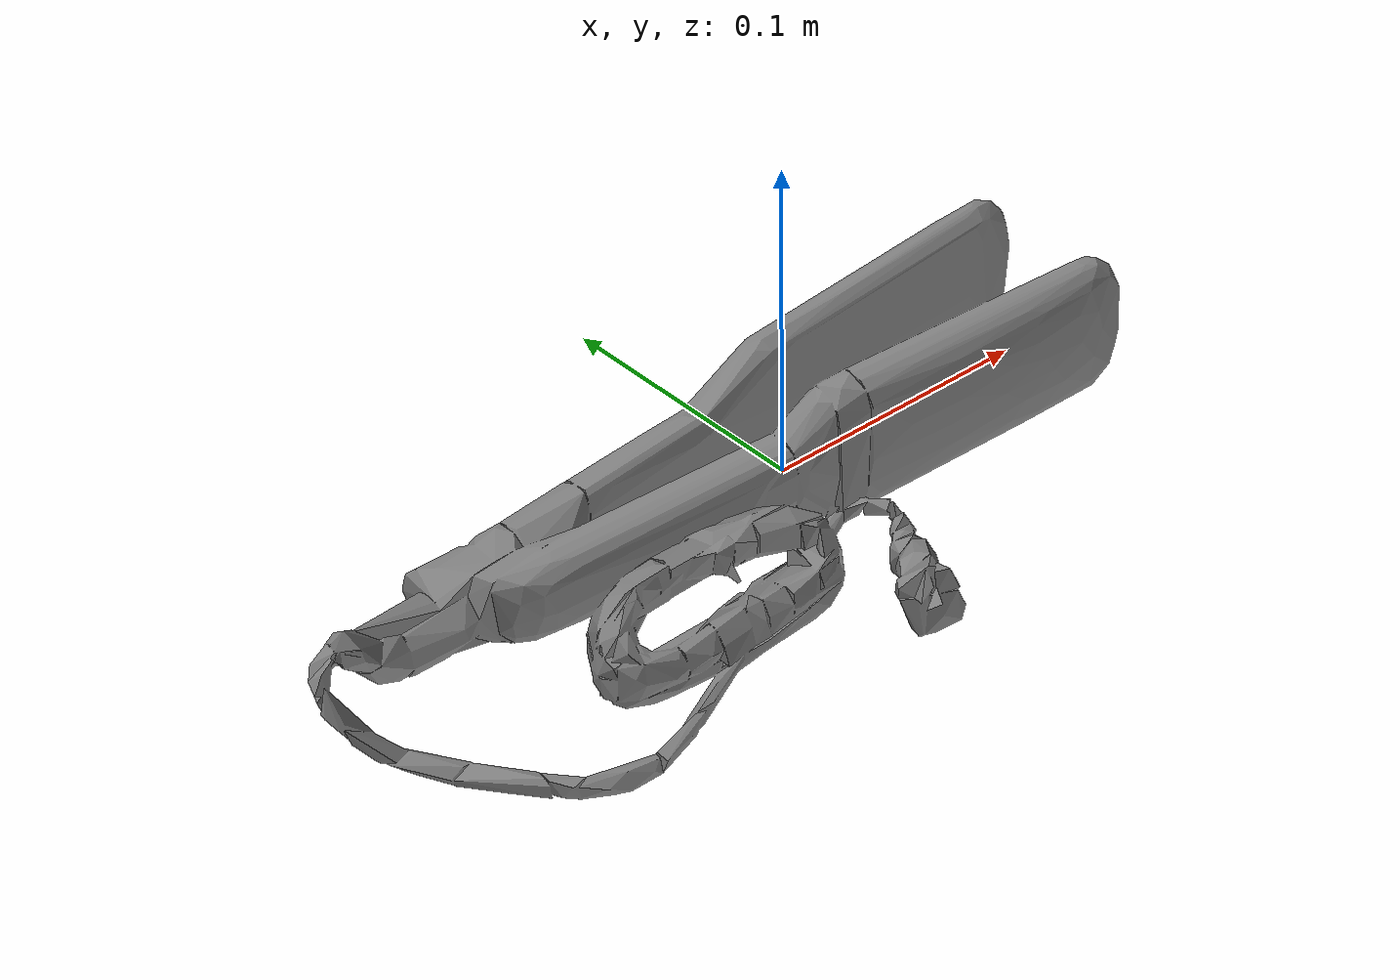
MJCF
<mujoco model="hair_straightener_Remington_TStudio_Silk_Ceramic_Hair_Straightener_2_Inch_Floating_Plates_M">
  <default>
    <default class="visual">
      <geom group="2" type="mesh" contype="0" conaffinity="0" />
    </default>
    <default class="collision">
      <geom group="3" type="mesh" />
    </default>
  </default>
  <asset>
    <mesh file="hair_straightener_Remington_TStudio_Silk_Ceramic_Hair_Straightener_2_Inch_Floating_Plates_M.stl" />
    <mesh file="hair_straightener_Remington_TStudio_Silk_Ceramic_Hair_Straightener_2_Inch_Floating_Plates_M_collision_0.stl" />
    <mesh file="hair_straightener_Remington_TStudio_Silk_Ceramic_Hair_Straightener_2_Inch_Floating_Plates_M_collision_1.stl" />
    <mesh file="hair_straightener_Remington_TStudio_Silk_Ceramic_Hair_Straightener_2_Inch_Floating_Plates_M_collision_2.stl" />
    <mesh file="hair_straightener_Remington_TStudio_Silk_Ceramic_Hair_Straightener_2_Inch_Floating_Plates_M_collision_3.stl" />
    <mesh file="hair_straightener_Remington_TStudio_Silk_Ceramic_Hair_Straightener_2_Inch_Floating_Plates_M_collision_4.stl" />
    <mesh file="hair_straightener_Remington_TStudio_Silk_Ceramic_Hair_Straightener_2_Inch_Floating_Plates_M_collision_5.stl" />
    <mesh file="hair_straightener_Remington_TStudio_Silk_Ceramic_Hair_Straightener_2_Inch_Floating_Plates_M_collision_6.stl" />
    <mesh file="hair_straightener_Remington_TStudio_Silk_Ceramic_Hair_Straightener_2_Inch_Floating_Plates_M_collision_7.stl" />
    <mesh file="hair_straightener_Remington_TStudio_Silk_Ceramic_Hair_Straightener_2_Inch_Floating_Plates_M_collision_8.stl" />
    <mesh file="hair_straightener_Remington_TStudio_Silk_Ceramic_Hair_Straightener_2_Inch_Floating_Plates_M_collision_9.stl" />
    <mesh file="hair_straightener_Remington_TStudio_Silk_Ceramic_Hair_Straightener_2_Inch_Floating_Plates_M_collision_10.stl" />
    <mesh file="hair_straightener_Remington_TStudio_Silk_Ceramic_Hair_Straightener_2_Inch_Floating_Plates_M_collision_11.stl" />
    <mesh file="hair_straightener_Remington_TStudio_Silk_Ceramic_Hair_Straightener_2_Inch_Floating_Plates_M_collision_12.stl" />
    <mesh file="hair_straightener_Remington_TStudio_Silk_Ceramic_Hair_Straightener_2_Inch_Floating_Plates_M_collision_13.stl" />
    <mesh file="hair_straightener_Remington_TStudio_Silk_Ceramic_Hair_Straightener_2_Inch_Floating_Plates_M_collision_14.stl" />
    <mesh file="hair_straightener_Remington_TStudio_Silk_Ceramic_Hair_Straightener_2_Inch_Floating_Plates_M_collision_15.stl" />
  </asset>
  <worldbody>
    <body name="hair_straightener_Remington_TStudio_Silk_Ceramic_Hair_Straightener_2_Inch_Floating_Plates_M">
      <geom mesh="hair_straightener_Remington_TStudio_Silk_Ceramic_Hair_Straightener_2_Inch_Floating_Plates_M" class="visual" />
      <geom mesh="hair_straightener_Remington_TStudio_Silk_Ceramic_Hair_Straightener_2_Inch_Floating_Plates_M_collision_0" class="collision" />
      <geom mesh="hair_straightener_Remington_TStudio_Silk_Ceramic_Hair_Straightener_2_Inch_Floating_Plates_M_collision_1" class="collision" />
      <geom mesh="hair_straightener_Remington_TStudio_Silk_Ceramic_Hair_Straightener_2_Inch_Floating_Plates_M_collision_2" class="collision" />
      <geom mesh="hair_straightener_Remington_TStudio_Silk_Ceramic_Hair_Straightener_2_Inch_Floating_Plates_M_collision_3" class="collision" />
      <geom mesh="hair_straightener_Remington_TStudio_Silk_Ceramic_Hair_Straightener_2_Inch_Floating_Plates_M_collision_4" class="collision" />
      <geom mesh="hair_straightener_Remington_TStudio_Silk_Ceramic_Hair_Straightener_2_Inch_Floating_Plates_M_collision_5" class="collision" />
      <geom mesh="hair_straightener_Remington_TStudio_Silk_Ceramic_Hair_Straightener_2_Inch_Floating_Plates_M_collision_6" class="collision" />
      <geom mesh="hair_straightener_Remington_TStudio_Silk_Ceramic_Hair_Straightener_2_Inch_Floating_Plates_M_collision_7" class="collision" />
      <geom mesh="hair_straightener_Remington_TStudio_Silk_Ceramic_Hair_Straightener_2_Inch_Floating_Plates_M_collision_8" class="collision" />
      <geom mesh="hair_straightener_Remington_TStudio_Silk_Ceramic_Hair_Straightener_2_Inch_Floating_Plates_M_collision_9" class="collision" />
      <geom mesh="hair_straightener_Remington_TStudio_Silk_Ceramic_Hair_Straightener_2_Inch_Floating_Plates_M_collision_10" class="collision" />
      <geom mesh="hair_straightener_Remington_TStudio_Silk_Ceramic_Hair_Straightener_2_Inch_Floating_Plates_M_collision_11" class="collision" />
      <geom mesh="hair_straightener_Remington_TStudio_Silk_Ceramic_Hair_Straightener_2_Inch_Floating_Plates_M_collision_12" class="collision" />
      <geom mesh="hair_straightener_Remington_TStudio_Silk_Ceramic_Hair_Straightener_2_Inch_Floating_Plates_M_collision_13" class="collision" />
      <geom mesh="hair_straightener_Remington_TStudio_Silk_Ceramic_Hair_Straightener_2_Inch_Floating_Plates_M_collision_14" class="collision" />
      <geom mesh="hair_straightener_Remington_TStudio_Silk_Ceramic_Hair_Straightener_2_Inch_Floating_Plates_M_collision_15" class="collision" />
    </body>
  </worldbody>
</mujoco>
